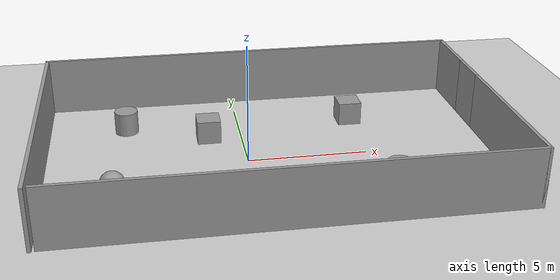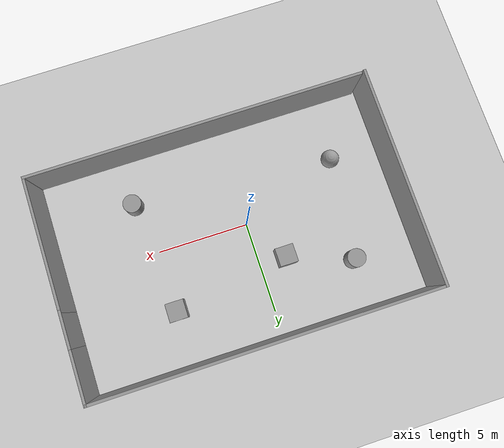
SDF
<sdf version="1.7">
 <world name="default">
  <light name="sun" type="directional">
   <pose>0 0 10 0 -0 0</pose>
   <diffuse>0.8 0.8 0.8 1</diffuse>
   <specular>0.2 0.2 0.2 1</specular>
   <attenuation>
    <range>1000</range>
    <constant>0.9</constant>
    <linear>0.01</linear>
    <quadratic>0.001</quadratic>
   </attenuation>
   <direction>-0.5 0.1 -0.9</direction>
   <spot><inner_angle>0</inner_angle><outer_angle>0</outer_angle><falloff>0</falloff></spot>
  </light>
  <model name="ground_plane">
   <static>1</static>
   <link name="link">
    <collision name="collision">
     <geometry><plane><normal>0 0 1</normal><size>100 100</size></plane></geometry>
     <surface>
      <contact><collide_bitmask>65535</collide_bitmask></contact>
      <friction><ode><mu>100</mu><mu2>50</mu2></ode></friction>
     </surface>
    </collision>
    <visual name="visual">
     <cast_shadows>0</cast_shadows>
     <geometry><plane><normal>0 0 1</normal><size>100 100</size></plane></geometry>
     <material>
      <script><uri>file://media/materials/scripts/gazebo.material</uri><name>Gazebo/Grey</name></script>
     </material>
    </visual>
   </link>
  </model>
  <gravity>0 0 -9.8</gravity>
  <magnetic_field>6e-06 2.3e-05 -4.2e-05</magnetic_field>
  <atmosphere type="adiabatic"/>
  <physics type="ode">
   <max_step_size>0.001</max_step_size>
   <real_time_factor>1</real_time_factor>
   <real_time_update_rate>1000</real_time_update_rate>
  </physics>
  <scene><ambient>0.4 0.4 0.4 1</ambient><background>0.7 0.7 0.7 1</background><shadows>1</shadows></scene>
  <spherical_coordinates>
   <surface_model>EARTH_WGS84</surface_model>
   <latitude_deg>0</latitude_deg>
   <longitude_deg>0</longitude_deg>
   <elevation>0</elevation>
   <heading_deg>0</heading_deg>
  </spherical_coordinates>
  <model name="myworld">
   <pose>0.998007 0.409978 0 0 -0 0</pose>
   <link name="Wall_16">
    <collision name="Wall_16_Collision">
     <geometry><box><size>18.5 0.15 2.5</size></box></geometry>
     <pose>0 0 1.25 0 -0 0</pose>
    </collision>
    <visual name="Wall_16_Visual">
     <pose>0 0 1.25 0 -0 0</pose>
     <geometry><box><size>18.5 0.15 2.5</size></box></geometry>
     <material>
      <script><uri>file://media/materials/scripts/gazebo.material</uri><name>Gazebo/Grey</name></script>
      <ambient>1 1 1 1</ambient>
     </material>
     <meta><layer>0</layer></meta>
    </visual>
    <pose>0.125 -5.875 0 0 -0 0</pose>
   </link>
   <link name="Wall_17">
    <collision name="Wall_17_Collision">
     <geometry><box><size>7.25 0.15 2.5</size></box></geometry>
     <pose>0 0 1.25 0 -0 0</pose>
    </collision>
    <visual name="Wall_17_Visual">
     <pose>0 0 1.25 0 -0 0</pose>
     <geometry><box><size>7.25 0.15 2.5</size></box></geometry>
     <material>
      <script><uri>file://media/materials/scripts/gazebo.material</uri><name>Gazebo/Grey</name></script>
      <ambient>1 1 1 1</ambient>
     </material>
     <meta><layer>0</layer></meta>
    </visual>
    <pose>9.3 -2.325 0 0 -0 1.5708</pose>
   </link>
   <link name="Wall_18">
    <collision name="Wall_18_Collision">
     <geometry><box><size>2 0.15 2.5</size></box></geometry>
     <pose>0 0 1.25 0 -0 0</pose>
    </collision>
    <visual name="Wall_18_Visual">
     <pose>0 0 1.25 0 -0 0</pose>
     <geometry><box><size>2 0.15 2.5</size></box></geometry>
     <material>
      <script><uri>file://media/materials/scripts/gazebo.material</uri><name>Gazebo/Grey</name></script>
      <ambient>1 1 1 1</ambient>
     </material>
     <meta><layer>0</layer></meta>
    </visual>
    <pose>9.3 2.15 0 0 -0 1.5708</pose>
   </link>
   <link name="Wall_19">
    <collision name="Wall_19_Collision">
     <geometry><box><size>3 0.15 2.5</size></box></geometry>
     <pose>0 0 1.25 0 -0 0</pose>
    </collision>
    <visual name="Wall_19_Visual">
     <pose>0 0 1.25 0 -0 0</pose>
     <geometry><box><size>3 0.15 2.5</size></box></geometry>
     <material>
      <script><uri>file://media/materials/scripts/gazebo.material</uri><name>Gazebo/Grey</name></script>
      <ambient>1 1 1 1</ambient>
     </material>
     <meta><layer>0</layer></meta>
    </visual>
    <pose>9.3 4.5 0 0 -0 1.5708</pose>
   </link>
   <link name="Wall_20">
    <collision name="Wall_20_Collision">
     <geometry><box><size>18.75 0.15 2.5</size></box></geometry>
     <pose>0 0 1.25 0 -0 0</pose>
    </collision>
    <visual name="Wall_20_Visual">
     <pose>0 0 1.25 0 -0 0</pose>
     <geometry><box><size>18.75 0.15 2.5</size></box></geometry>
     <material>
      <script><uri>file://media/materials/scripts/gazebo.material</uri><name>Gazebo/Grey</name></script>
      <ambient>1 1 1 1</ambient>
     </material>
     <meta><layer>0</layer></meta>
    </visual>
    <pose>0 5.925 0 0 -0 3.14159</pose>
   </link>
   <link name="Wall_21">
    <collision name="Wall_21_Collision">
     <geometry><box><size>12 0.15 2.5</size></box></geometry>
     <pose>0 0 1.25 0 -0 0</pose>
    </collision>
    <visual name="Wall_21_Visual">
     <pose>0 0 1.25 0 -0 0</pose>
     <geometry><box><size>12 0.15 2.5</size></box></geometry>
     <material>
      <script><uri>file://media/materials/scripts/gazebo.material</uri><name>Gazebo/Grey</name></script>
      <ambient>1 1 1 1</ambient>
     </material>
     <meta><layer>0</layer></meta>
    </visual>
    <pose>-9.3 -0 0 0 -0 -1.5708</pose>
   </link>
   <static>1</static>
  </model>
  <model name="unit_box">
   <pose>4.97457 3.33305 0.5 0 -0 0</pose>
   <link name="link">
    <inertial>
     <mass>1</mass>
     <inertia>
      <ixx>0.166667</ixx>
      <ixy>0</ixy>
      <ixz>0</ixz>
      <iyy>0.166667</iyy>
      <iyz>0</iyz>
      <izz>0.166667</izz>
     </inertia>
    </inertial>
    <collision name="collision"><geometry><box><size>1 1 1</size></box></geometry></collision>
    <visual name="visual">
     <geometry><box><size>1 1 1</size></box></geometry>
     <material>
      <script><name>Gazebo/Grey</name><uri>file://media/materials/scripts/gazebo.material</uri></script>
     </material>
    </visual>
   </link>
  </model>
  <model name="unit_box_0">
   <pose>-1.43254 2.34135 0.5 0 -0 0</pose>
   <link name="link">
    <inertial>
     <mass>1</mass>
     <inertia>
      <ixx>0.166667</ixx>
      <ixy>0</ixy>
      <ixz>0</ixz>
      <iyy>0.166667</iyy>
      <iyz>0</iyz>
      <izz>0.166667</izz>
     </inertia>
    </inertial>
    <collision name="collision"><geometry><box><size>1 1 1</size></box></geometry></collision>
    <visual name="visual">
     <geometry><box><size>1 1 1</size></box></geometry>
     <material>
      <script><name>Gazebo/Grey</name><uri>file://media/materials/scripts/gazebo.material</uri></script>
     </material>
    </visual>
   </link>
  </model>
  <model name="unit_cylinder">
   <pose>5.57313 -2.8502 0.5 0 -0 0</pose>
   <link name="link">
    <inertial>
     <mass>1</mass>
     <inertia><ixx>0.145833</ixx><ixy>0</ixy><ixz>0</ixz><iyy>0.145833</iyy><iyz>0</iyz><izz>0.125</izz></inertia>
    </inertial>
    <collision name="collision">
     <geometry><cylinder><radius>0.5</radius><length>1</length></cylinder></geometry>
    </collision>
    <visual name="visual">
     <geometry><cylinder><radius>0.5</radius><length>1</length></cylinder></geometry>
     <material>
      <script><name>Gazebo/Grey</name><uri>file://media/materials/scripts/gazebo.material</uri></script>
     </material>
    </visual>
   </link>
  </model>
  <model name="unit_sphere">
   <pose>-5.50401 -2.01146 0.5 0 -0 0</pose>
   <link name="link">
    <inertial>
     <mass>1</mass>
     <inertia><ixx>0.1</ixx><ixy>0</ixy><ixz>0</ixz><iyy>0.1</iyy><iyz>0</iyz><izz>0.1</izz></inertia>
    </inertial>
    <collision name="collision"><geometry><sphere><radius>0.5</radius></sphere></geometry></collision>
    <visual name="visual">
     <geometry><sphere><radius>0.5</radius></sphere></geometry>
     <material>
      <script><name>Gazebo/Grey</name><uri>file://media/materials/scripts/gazebo.material</uri></script>
     </material>
    </visual>
   </link>
  </model>
  <model name="unit_cylinder_0">
   <pose>-4.91547 3.62352 0.5 0 -0 0</pose>
   <link name="link">
    <inertial>
     <mass>1</mass>
     <inertia><ixx>0.145833</ixx><ixy>0</ixy><ixz>0</ixz><iyy>0.145833</iyy><iyz>0</iyz><izz>0.125</izz></inertia>
    </inertial>
    <collision name="collision">
     <geometry><cylinder><radius>0.5</radius><length>1</length></cylinder></geometry>
    </collision>
    <visual name="visual">
     <geometry><cylinder><radius>0.5</radius><length>1</length></cylinder></geometry>
     <material>
      <script><name>Gazebo/Grey</name><uri>file://media/materials/scripts/gazebo.material</uri></script>
     </material>
    </visual>
   </link>
  </model>
 </world>
</sdf>
